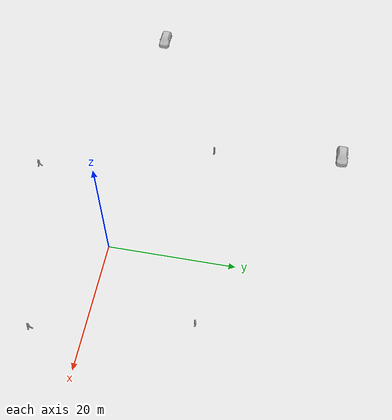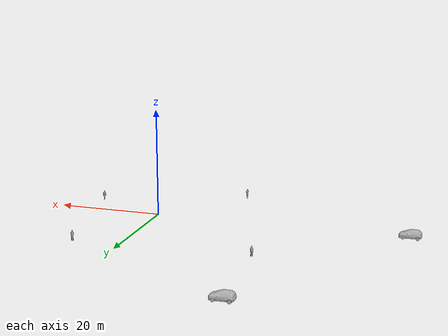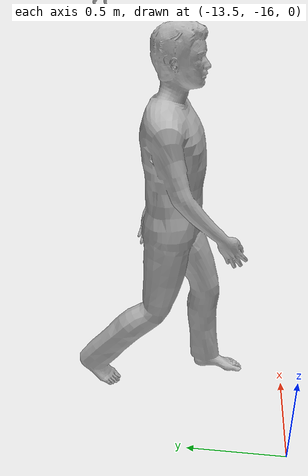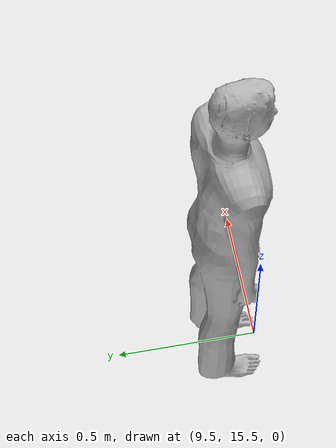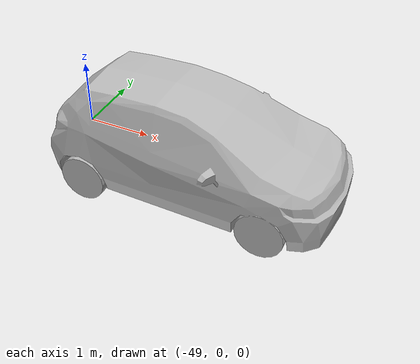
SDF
<sdf version="1.7">
 <world name="outdoor">
  <scene>
   <ambient>0.2 0.2 0.2 1</ambient>
   <grid>0</grid>
   <sky><clouds><speed>4</speed></clouds></sky>
   <background>0.7 0.7 0.7 1</background>
   <shadows>1</shadows>
  </scene>
  <physics type="ode">
   <ode>
    <solver>
     <type>quick</type>
     <iters>100</iters>
     <sor>1</sor>
     <use_dynamic_moi_rescaling>0</use_dynamic_moi_rescaling>
    </solver>
    <constraints>
     <cfm>0</cfm>
     <erp>0.9</erp>
     <contact_max_correcting_vel>0.1</contact_max_correcting_vel>
     <contact_surface_layer>0</contact_surface_layer>
    </constraints>
   </ode>
   <real_time_update_rate>1000</real_time_update_rate>
   <max_step_size>0.001</max_step_size>
   <real_time_factor>1</real_time_factor>
  </physics>
  <light name="sun" type="directional">
   <cast_shadows>0</cast_shadows>
   <pose>0 0 100 0 -0 0</pose>
   <diffuse>0.8 0.8 0.8 1</diffuse>
   <specular>0.9 0.9 0.9 1</specular>
   <attenuation>
    <range>1000</range>
    <constant>0.9</constant>
    <linear>0.01</linear>
    <quadratic>0.001</quadratic>
   </attenuation>
   <direction>0.2 0.2 -0.9</direction>
   <spot><inner_angle>0</inner_angle><outer_angle>0</outer_angle><falloff>0</falloff></spot>
  </light>
  <spherical_coordinates>
   <surface_model>EARTH_WGS84</surface_model>
   <latitude_deg>37.4135</latitude_deg>
   <longitude_deg>-121.997</longitude_deg>
   <elevation>1.3</elevation>
   <heading_deg>0</heading_deg>
  </spherical_coordinates>
  <model name="person1">
   <frame name="person_standing::__model__" attached_to="person_standing::link">
    <pose relative_to="__model__">0 0 0 0 -0 0</pose>
   </frame>
   <link name="person_standing::link">
    <inertial>
     <pose>0 -0.1 0.95 0 -0 0</pose>
     <mass>80</mass>
     <inertia><ixx>24.88</ixx><ixy>0</ixy><ixz>0</ixz><iyy>25.73</iyy><iyz>0</iyz><izz>2.48</izz></inertia>
    </inertial>
    <collision name="bottom">
     <pose>0 -0.1 0.01 0 -0 0</pose>
     <geometry><box><size>0.5 0.35 0.02</size></box></geometry>
    </collision>
    <collision name="person">
     <pose>0 0 0.02 0.04 -0 0</pose>
     <geometry><mesh><uri>model://person_standing/meshes/standing.dae</uri></mesh></geometry>
    </collision>
    <visual name="visual">
     <pose>0 0 0.02 0.04 -0 0</pose>
     <geometry><mesh><uri>model://person_standing/meshes/standing.dae</uri></mesh></geometry>
    </visual>
    <pose relative_to="person_standing::__model__">0 0 0 0 -0 0</pose>
   </link>
   <pose>10 15.5773 -1.1274 0 -0 0</pose>
   <static>1</static>
  </model>
  <model name="person2">
   <frame name="person_walking::__model__" attached_to="person_walking::link">
    <pose relative_to="__model__">0 0 0 0 -0 0</pose>
   </frame>
   <link name="person_walking::link">
    <inertial>
     <pose>0 0 0.95 0 -0 0</pose>
     <mass>80</mass>
     <inertia><ixx>27.82</ixx><ixy>0</ixy><ixz>0</ixz><iyy>24.88</iyy><iyz>0</iyz><izz>4.57</izz></inertia>
    </inertial>
    <collision name="bottom">
     <pose>0 0 0.01 0 -0 0</pose>
     <geometry><box><size>0.35 0.75 0.02</size></box></geometry>
    </collision>
    <collision name="person">
     <pose>0 0 -0.02 0 -0 0</pose>
     <geometry><mesh><uri>model://person_walking/meshes/walking.dae</uri></mesh></geometry>
    </collision>
    <visual name="visual">
     <pose>0 0 -0.02 0 -0 0</pose>
     <geometry><mesh><uri>model://person_walking/meshes/walking.dae</uri></mesh></geometry>
    </visual>
    <pose relative_to="person_walking::__model__">0 0 0 0 -0 0</pose>
   </link>
   <pose>-13.0804 -15.3608 0.072251 0 -0 0</pose>
   <static>1</static>
  </model>
  <model name="person3">
   <frame name="person_standing::__model__" attached_to="person_standing::link">
    <pose relative_to="__model__">0 0 0 0 -0 0</pose>
   </frame>
   <link name="person_standing::link">
    <inertial>
     <pose>0 -0.1 0.95 0 -0 0</pose>
     <mass>80</mass>
     <inertia><ixx>24.88</ixx><ixy>0</ixy><ixz>0</ixz><iyy>25.73</iyy><iyz>0</iyz><izz>2.48</izz></inertia>
    </inertial>
    <collision name="bottom">
     <pose>0 -0.1 0.01 0 -0 0</pose>
     <geometry><box><size>0.5 0.35 0.02</size></box></geometry>
    </collision>
    <collision name="person">
     <pose>0 0 0.02 0.04 -0 0</pose>
     <geometry><mesh><uri>model://person_standing/meshes/standing.dae</uri></mesh></geometry>
    </collision>
    <visual name="visual">
     <pose>0 0 0.02 0.04 -0 0</pose>
     <geometry><mesh><uri>model://person_standing/meshes/standing.dae</uri></mesh></geometry>
    </visual>
    <pose relative_to="person_standing::__model__">0 0 0 0 -0 0</pose>
   </link>
   <pose>-22.0828 13.1516 -1.34723 0 -0 0</pose>
   <static>1</static>
  </model>
  <model name="person4">
   <frame name="person_walking::__model__" attached_to="person_walking::link">
    <pose relative_to="__model__">0 0 0 0 -0 0</pose>
   </frame>
   <link name="person_walking::link">
    <inertial>
     <pose>0 0 0.95 0 -0 0</pose>
     <mass>80</mass>
     <inertia><ixx>27.82</ixx><ixy>0</ixy><ixz>0</ixz><iyy>24.88</iyy><iyz>0</iyz><izz>4.57</izz></inertia>
    </inertial>
    <collision name="bottom">
     <pose>0 0 0.01 0 -0 0</pose>
     <geometry><box><size>0.35 0.75 0.02</size></box></geometry>
    </collision>
    <collision name="person">
     <pose>0 0 -0.02 0 -0 0</pose>
     <geometry><mesh><uri>model://person_walking/meshes/walking.dae</uri></mesh></geometry>
    </collision>
    <visual name="visual">
     <pose>0 0 -0.02 0 -0 0</pose>
     <geometry><mesh><uri>model://person_walking/meshes/walking.dae</uri></mesh></geometry>
    </visual>
    <pose relative_to="person_walking::__model__">0 0 0 0 -0 0</pose>
   </link>
   <pose>15 -7.95679 -0.651293 0 -0 0</pose>
   <static>1</static>
  </model>
  <gravity>0 0 -9.8</gravity>
  <magnetic_field>6e-06 2.3e-05 -4.2e-05</magnetic_field>
  <atmosphere type="adiabatic"/>
  <model name="hatchback_blue">
   <static>1</static>
   <link name="link">
    <collision name="collision">
     <pose>0 0 0 0 -0 1.5708</pose>
     <geometry>
      <mesh><scale>0.0254 0.0254 0.0254</scale><uri>model://hatchback_blue/meshes/hatchback.obj</uri></mesh>
     </geometry>
    </collision>
    <visual name="visual">
     <pose>0 0 0 0 -0 1.5708</pose>
     <geometry>
      <mesh><scale>0.0254 0.0254 0.0254</scale><uri>model://hatchback_blue/meshes/hatchback.obj</uri></mesh>
     </geometry>
    </visual>
   </link>
   <pose>-47.0956 -0.667343 0 0 -0 0</pose>
  </model>
  <model name="hatchback_red">
   <static>1</static>
   <link name="link">
    <collision name="collision">
     <pose>0 0 0 0 -0 1.5708</pose>
     <geometry>
      <mesh><scale>0.0254 0.0254 0.0254</scale><uri>model://hatchback_red/meshes/hatchback.obj</uri></mesh>
     </geometry>
    </collision>
    <visual name="visual">
     <pose>0 0 0 0 -0 1.5708</pose>
     <geometry>
      <mesh><scale>0.0254 0.0254 0.0254</scale><uri>model://hatchback_red/meshes/hatchback.obj</uri></mesh>
     </geometry>
    </visual>
   </link>
   <pose>-24.2733 34.8313 0 0 -0 0</pose>
  </model>
 </world>
</sdf>
